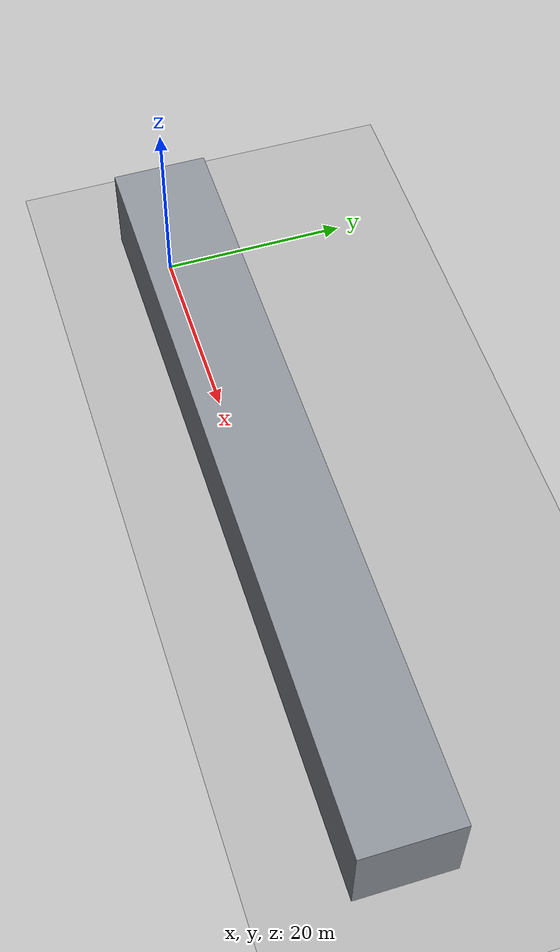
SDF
<?xml version="1.0" ?>
<sdf version="1.9">
  <world name="bwt_8_comp">
    <physics name="1ms" type="ignored">
      <max_step_size>0.001</max_step_size>
      <real_time_factor>1.0</real_time_factor>
    </physics>
    <plugin filename="gz-sim-physics-system"
        name="gz::sim::systems::Physics">
    </plugin>
    <plugin filename="gz-sim-user-commands-system"
        name="gz::sim::systems::UserCommands">
    </plugin>
    <plugin filename="gz-sim-scene-broadcaster-system"
        name="gz::sim::systems::SceneBroadcaster">
    </plugin>
    <plugin filename="gz-sim-imu-system"
        name="gz::sim::systems::Imu">
    </plugin>
    <plugin filename="gz-sim-sensors-system"
        name="gz::sim::systems::Sensors">
      <render_engine>ogre2</render_engine>
    </plugin>

    <gui fullscreen="0">
      <plugin filename="MinimalScene" name="3D View">
        <gz-gui>
          <title>3D View</title>
          <property type="bool" key="showTitleBar">false</property>
          <property type="string" key="state">docked</property>
        </gz-gui>
        <engine>ogre2</engine>
        <scene>scene</scene>
        <ambient_light>0.4 0.4 0.4</ambient_light>
        <background_color>0.8 0.8 0.8</background_color>
        <camera_pose>-18 -22 14 0 0.45 0.9</camera_pose>
      </plugin>
      <plugin filename="GzSceneManager" name="Scene Manager"/>
      <plugin filename="InteractiveViewControl" name="Interactive view control"/>
      <plugin filename="CameraTracking" name="Camera Tracking"/>

      <plugin filename="WorldControl" name="World control">
        <gz-gui>
          <title>World control</title>
          <property type="bool" key="showTitleBar">false</property>
          <property type="bool" key="resizable">false</property>
          <property type="double" key="height">72</property>
          <property type="double" key="width">121</property>
          <property type="double" key="z">1</property>
          <property type="string" key="state">floating</property>
          <anchors target="3D View">
            <line own="left" target="left"/>
            <line own="bottom" target="bottom"/>
          </anchors>
        </gz-gui>
        <play_pause>true</play_pause>
        <step>true</step>
        <start_paused>false</start_paused>
        <service>/world/bwt_8_comp/control</service>
        <stats_topic>/world/bwt_8_comp/stats</stats_topic>
      </plugin>

      <plugin filename="WorldStats" name="World stats">
        <gz-gui>
          <title>World stats</title>
          <property type="bool" key="showTitleBar">false</property>
          <property type="bool" key="resizable">false</property>
          <property type="double" key="height">110</property>
          <property type="double" key="width">290</property>
          <property type="double" key="z">1</property>
          <property type="string" key="state">floating</property>
          <anchors target="3D View">
            <line own="right" target="right"/>
            <line own="bottom" target="bottom"/>
          </anchors>
        </gz-gui>
        <sim_time>true</sim_time>
        <real_time>true</real_time>
        <real_time_factor>true</real_time_factor>
        <iterations>true</iterations>
        <topic>/world/bwt_8_comp/stats</topic>
      </plugin>

      <plugin filename="EntityTree" name="Entity tree"/>
      <plugin filename="ComponentInspector" name="Component Inspector"/>
    </gui>

    <light type="directional" name="sun">
      <cast_shadows>true</cast_shadows>
      <pose>0 0 10 0 0 0</pose>
      <diffuse>0.8 0.8 0.8 1</diffuse>
      <specular>0.2 0.2 0.2 1</specular>
      <attenuation>
        <range>1000</range>
        <constant>0.9</constant>
        <linear>0.01</linear>
        <quadratic>0.001</quadratic>
      </attenuation>
      <direction>-0.5 0.1 -0.9</direction>
    </light>

    <model name="ground_plane">
      <static>true</static>
      <link name="link">
        <collision name="collision">
          <geometry>
            <plane>
              <normal>0 0 1</normal>
              <size>100 100</size>
            </plane>
          </geometry>
          <surface>
            <friction>
              <ode>
                <mu>100</mu>
                <mu2>50</mu2>
              </ode>
            </friction>
          </surface>
        </collision>
        <visual name="visual">
          <cast_shadows>false</cast_shadows>
          <geometry>
            <plane>
              <normal>0 0 1</normal>
              <size>100 100</size>
            </plane>
          </geometry>
          <material>
            <ambient>0.6 0.6 0.6 1</ambient>
            <diffuse>0.7 0.7 0.7 1</diffuse>
          </material>
        </visual>
      </link>
    </model>

    <model name="bwt_8comp">
      <static>true</static>
      <pose>-0.71336 0.911994 0 0 -0 0</pose>
      <link name="link">
        <collision name="collision">
          <geometry>
            <mesh>
              <uri>model://bwt_8comp/meshes/8_comp_longs_v2.stl</uri>
            </mesh>
          </geometry>
        </collision>
        <visual name="visual">
          <geometry>
            <mesh>
              <uri>model://bwt_8comp/meshes/8_comp_longs_v2.stl</uri>
            </mesh>
          </geometry>
          <material>
            <ambient>0.35 0.36 0.38 1</ambient>
            <diffuse>0.55 0.57 0.60 1</diffuse>
          </material>
        </visual>
      </link>
    </model>

    <model name="catch_floor">
      <static>true</static>
      <pose>0 0 -20 0 0 0</pose>
      <link name="link">
        <collision name="collision">
          <geometry><plane><normal>0 0 1</normal><size>2000 2000</size></plane></geometry>
        </collision>
      </link>
    </model>
</world>
</sdf>
